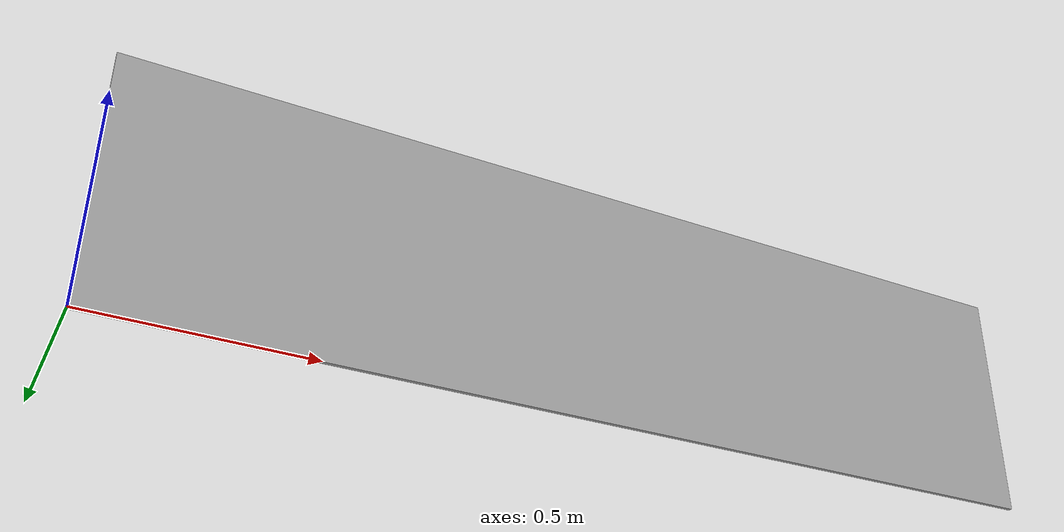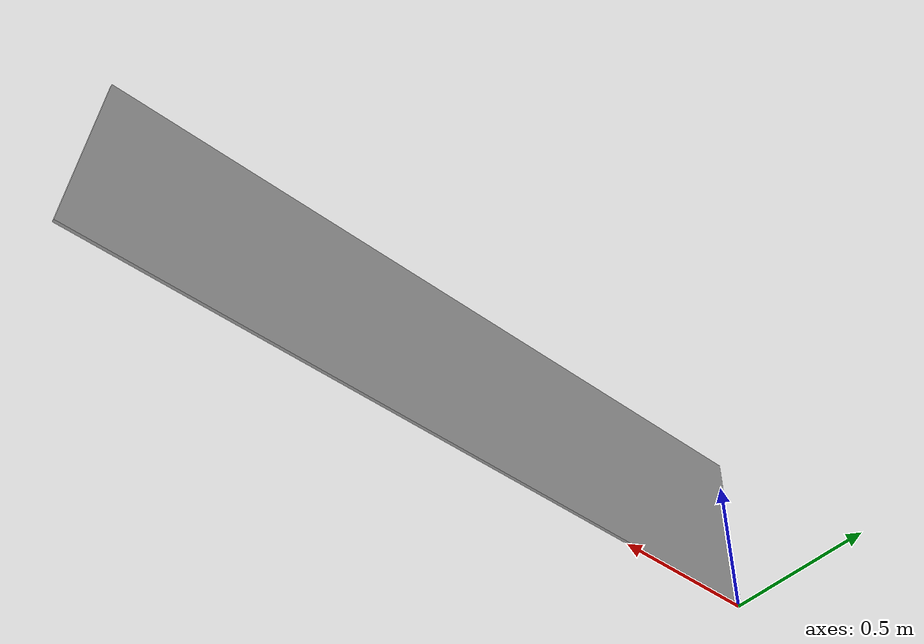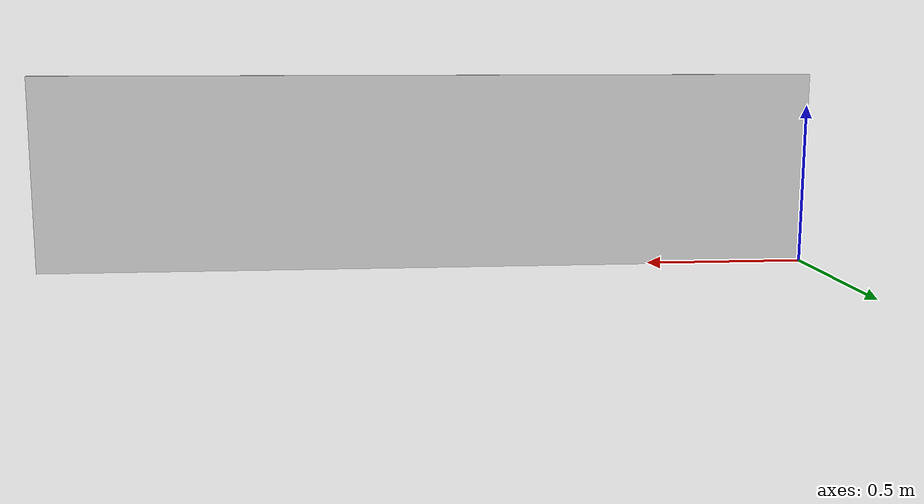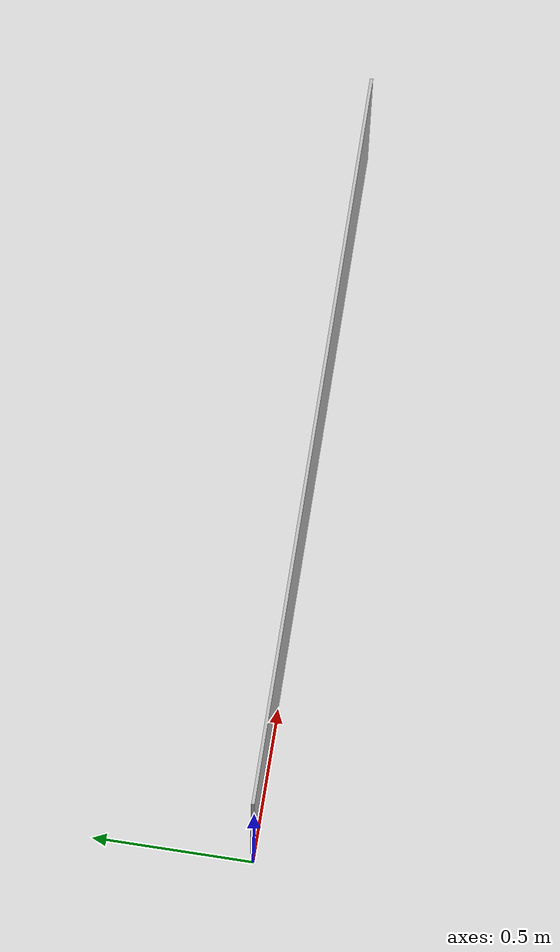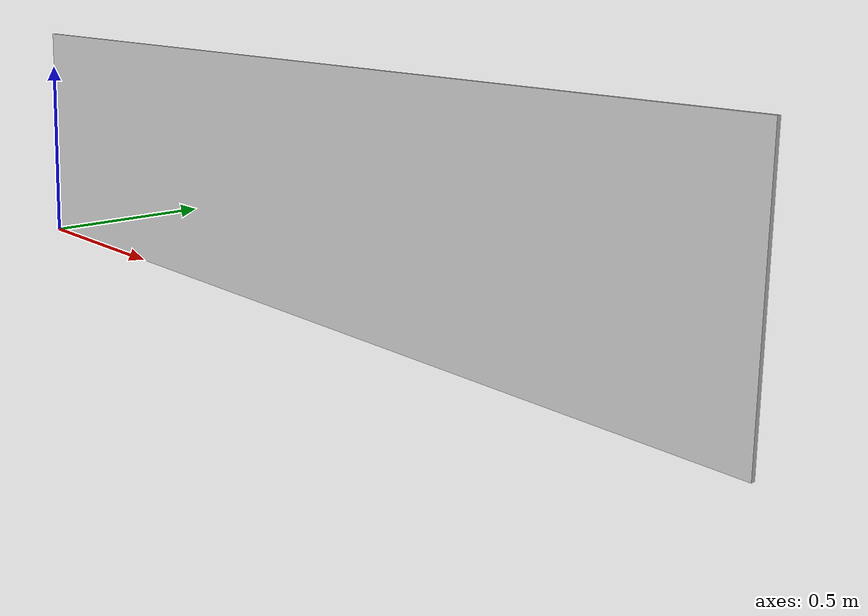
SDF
<?xml version="1.0" ?>
<sdf version="1.5">
  <model name="NistWallHalf">
        <static>true</static>
    <link name="link">
    <gravity>0</gravity>
      <collision name="collision">
        <geometry>
          <mesh>
            <scale>1 1 1</scale>
            <uri>model://nist_wall_half/meshes/nistwallhalf.dae</uri>
          </mesh>
        </geometry>
      </collision>
      <visual name="visual">
        <geometry>
          <mesh>
            <scale>1 1 1</scale>
            <uri>model://nist_wall_half/meshes/nistwallhalf.dae</uri>
          </mesh>
        </geometry>
      </visual>
    </link>
  </model>
</sdf>
